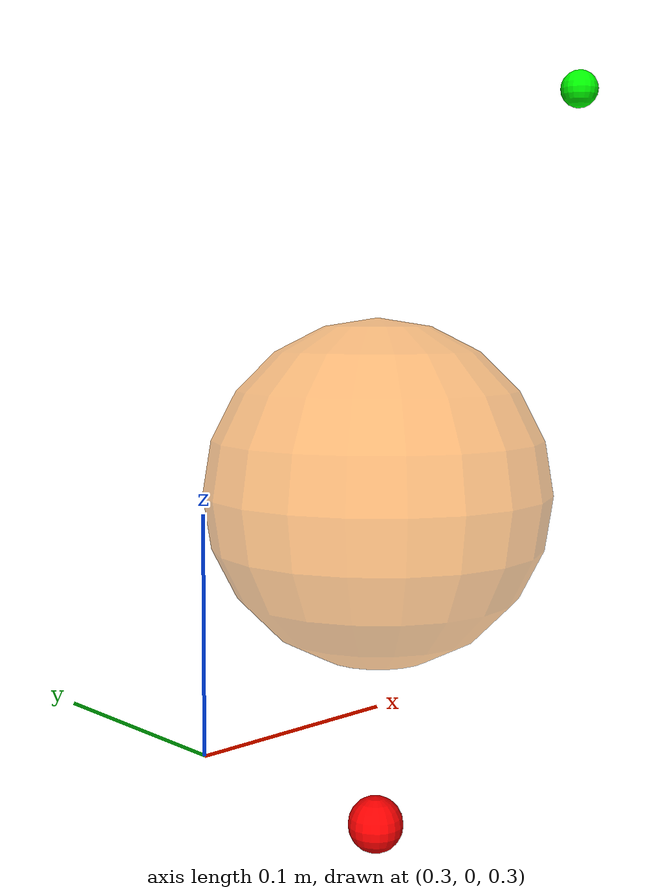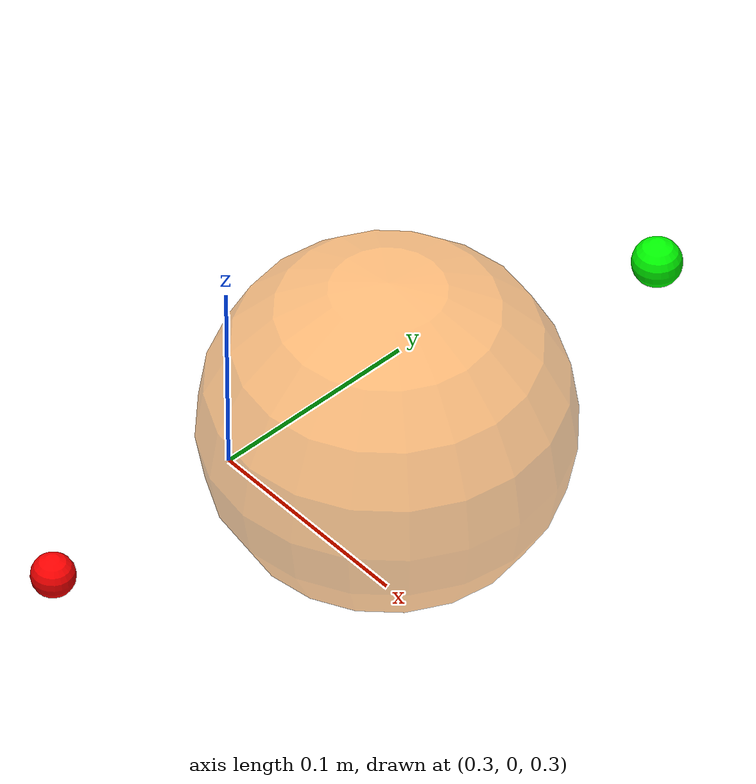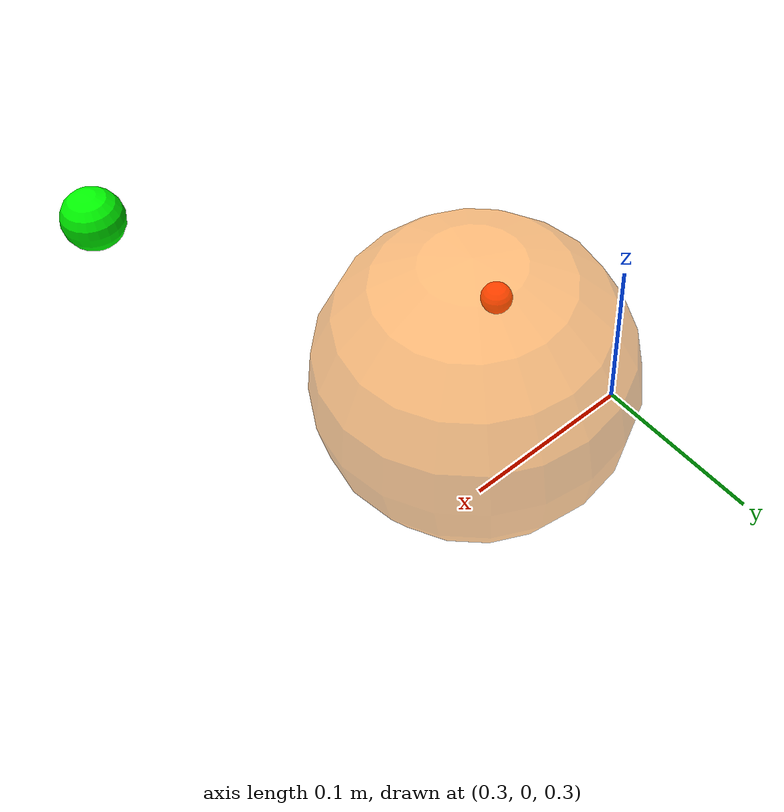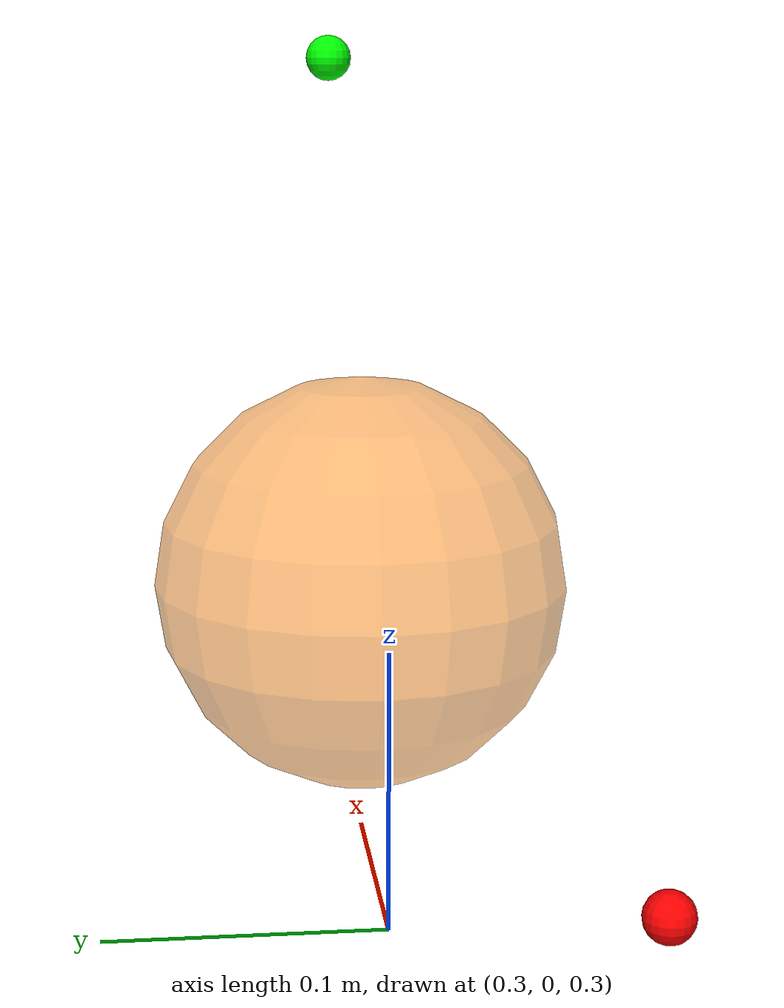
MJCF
<mujoco model="start goal obstacle">
        <worldbody>
            <!-- Start Marker -->
            <light name="top" pos="0 0 1"/>
            <body name="start_marker" pos="0.55 0 0.6">
                <geom type="sphere" size="0.01" rgba="0 1 0 1" />
            </body>
            <!-- Goal Marker -->
            <body name="goal_marker" pos="0.3 -0.1 0.3">
                <geom type="sphere" size="0.01" rgba="1 0 0 1" />
            </body>
            <!-- Obstacle -->
            <body name="obstacle" pos="0.4 0 0.4">
                <geom type="sphere" size="0.08" rgba="1 0.5 0 0.5" />
            </body>
        </worldbody>
    </mujoco>
